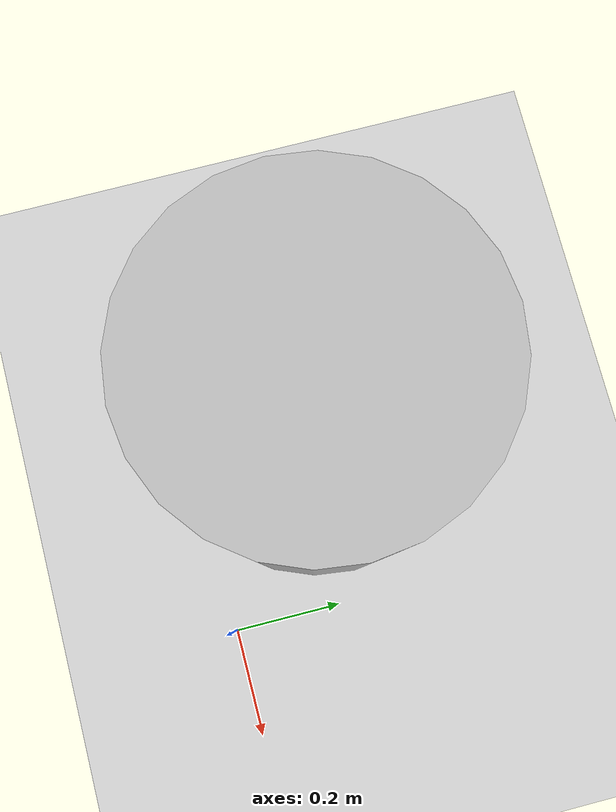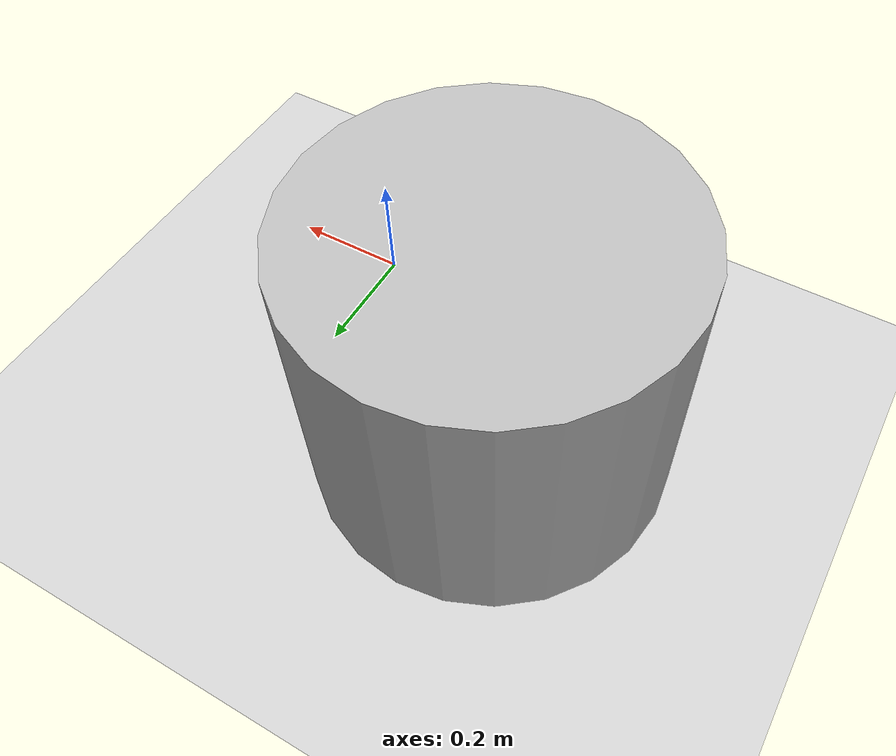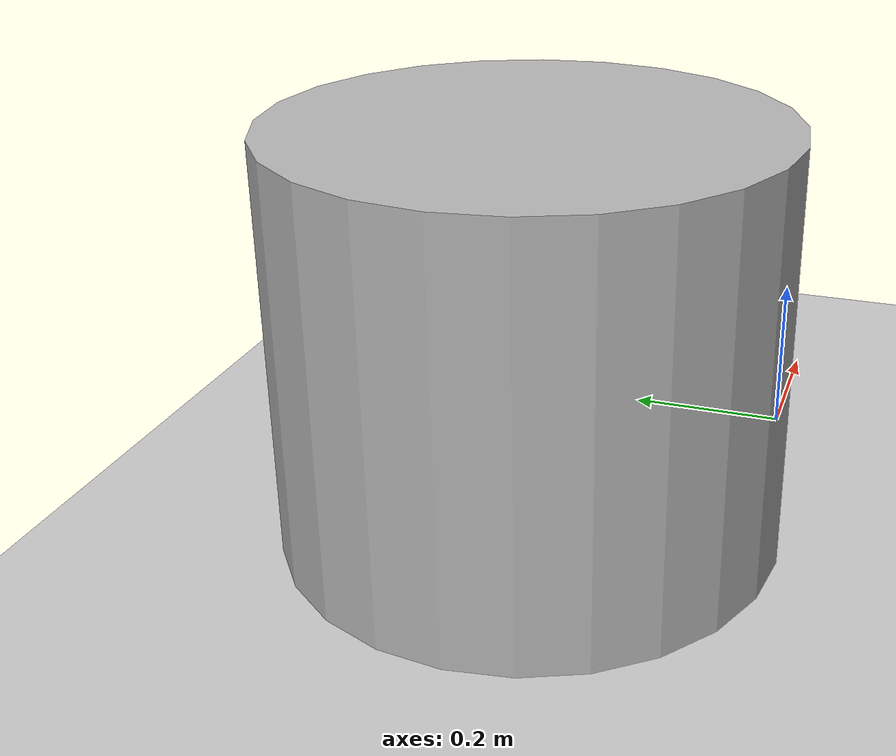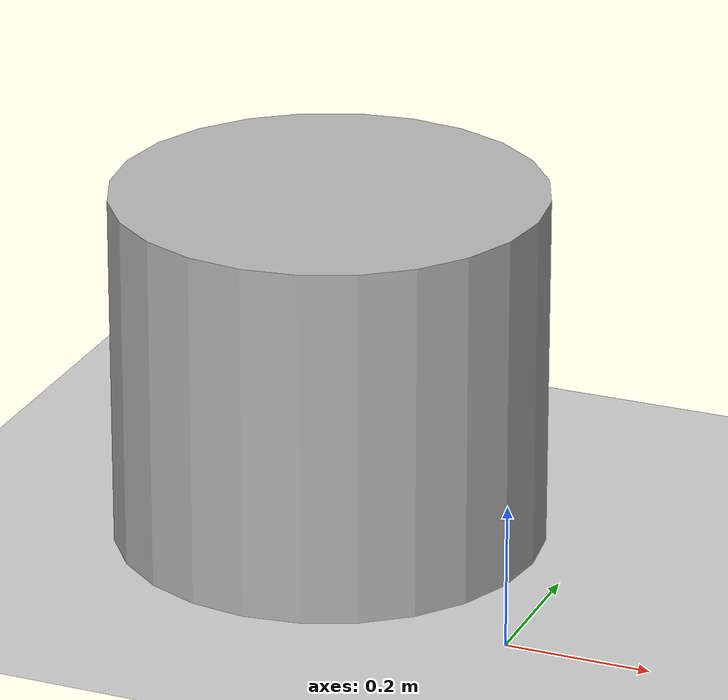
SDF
<sdf version="1.7">
 <world name="default">
  <light name="sun" type="directional">
   <pose>0 0 10 0 -0 0</pose>
   <diffuse>0.8 0.8 0.8 1</diffuse>
   <specular>0.2 0.2 0.2 1</specular>
   <attenuation>
    <range>1000</range>
    <constant>0.9</constant>
    <linear>0.01</linear>
    <quadratic>0.001</quadratic>
   </attenuation>
   <direction>-0.5 0.1 -0.9</direction>
   <spot><inner_angle>0</inner_angle><outer_angle>0</outer_angle><falloff>0</falloff></spot>
  </light>
  <model name="ground_plane">
   <static>1</static>
   <link name="link">
    <collision name="collision">
     <geometry><plane><normal>0 0 1</normal><size>100 100</size></plane></geometry>
     <surface><friction><ode><mu>100</mu><mu2>50</mu2></ode></friction></surface>
    </collision>
    <visual name="visual">
     <cast_shadows>0</cast_shadows>
     <geometry><plane><normal>0 0 1</normal><size>100 100</size></plane></geometry>
     <material>
      <script><uri>file://media/materials/scripts/gazebo.material</uri><name>Gazebo/Grey</name></script>
     </material>
    </visual>
   </link>
  </model>
  <gravity>0 0 -9.8</gravity>
  <magnetic_field>6e-06 2.3e-05 -4.2e-05</magnetic_field>
  <atmosphere type="adiabatic"/>
  <physics type="ode">
   <max_step_size>0.001</max_step_size>
   <real_time_factor>1</real_time_factor>
   <real_time_update_rate>1000</real_time_update_rate>
  </physics>
  <scene><ambient>0.4 0.4 0.4 1</ambient><background>0.7 0.7 0.7 1</background><shadows>1</shadows></scene>
  <spherical_coordinates>
   <surface_model>EARTH_WGS84</surface_model>
   <latitude_deg>0</latitude_deg>
   <longitude_deg>0</longitude_deg>
   <elevation>0</elevation>
   <heading_deg>0</heading_deg>
  </spherical_coordinates>
  <model name="rovModel">
   <static>0</static>
   <link name="body">
    <inertial>
     <mass>1102.7</mass>
     <inertia><ixx>645.998</ixx><ixy>0</ixy><ixz>0</ixz><iyy>645.998</iyy><iyz>0</iyz><izz>49.6215</izz></inertia>
    </inertial>
    <collision name="collision">
     <geometry><cylinder><radius>0.3</radius><length>0.5</length></cylinder></geometry>
    </collision>
    <visual name="visual">
     <geometry><cylinder><radius>0.3</radius><length>0.5</length></cylinder></geometry>
    </visual>
   </link>
   <pose>-0.35423 0.245413 0.249992 -1e-06 1e-06 0</pose>
  </model>
 </world>
</sdf>
